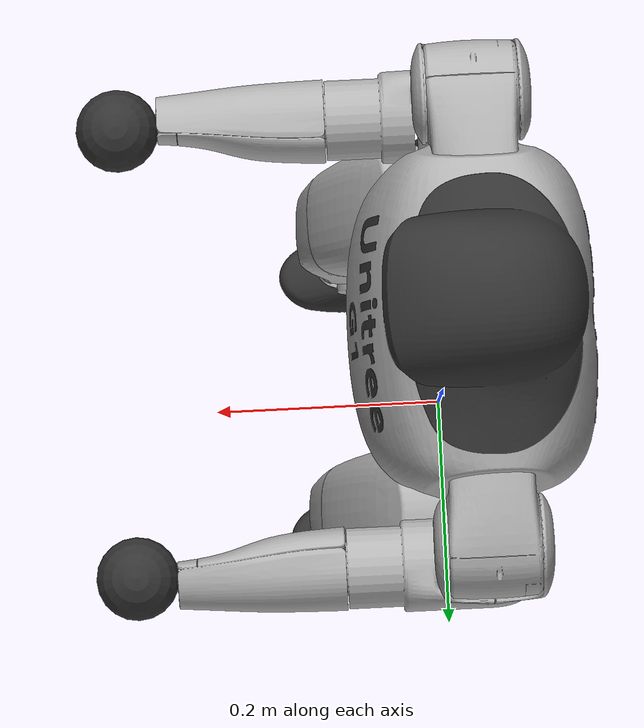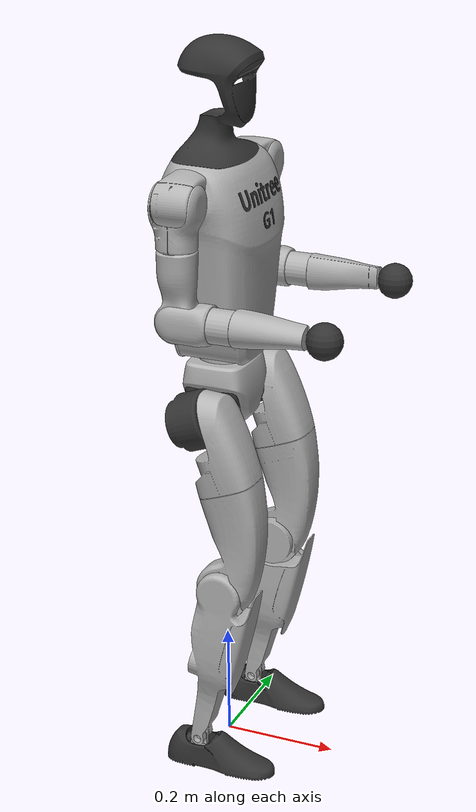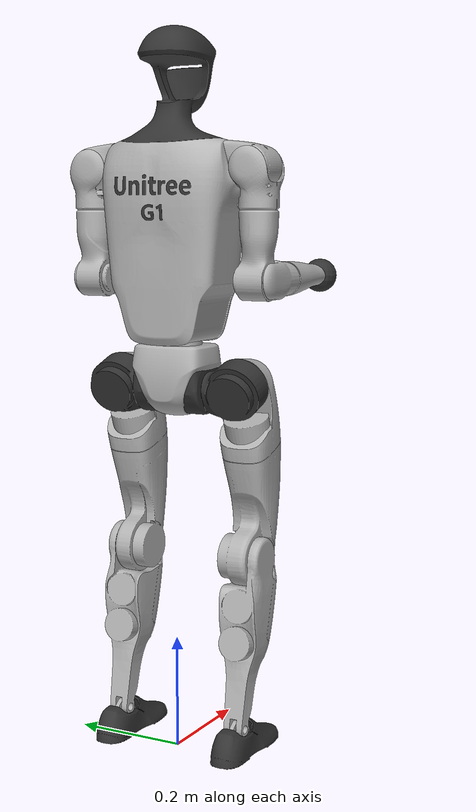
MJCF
<mujoco model="g1">
  <compiler angle="radian" meshdir="assets" autolimits="true"/>

  <option timestep="0.01" iterations="1" ls_iterations="5">
    <flag eulerdamp="disable"/>
  </option>

  <custom>
    <numeric data="15" name="max_contact_points" />
    <numeric data="15" name="max_geom_pairs" />
  </custom>

  <default>
    <geom condim="3"/>
    <default class="g1">
      <site rgba="1 0 0 1" size="0.01" group="5"/>
      <joint damping="0.5" armature="0.01" frictionloss="0.1"/>
      <position dampratio="1" inheritrange="1"/>
      <default class="arm_joint">
        <position kp="10" forcerange="-20 20"/>
      </default>
      <default class="hip_joint">
        <position kp="40" dampratio="0.2" forcerange="-88 88"/>
      </default>
      <default class="knee_joint">
        <position kp="40" forcerange="-139 139"/>
      </default>
      <default class="ankle_joint">
        <position kp="30" forcerange="-40 40"/>
      </default>
      <default class="torso_joint">
        <position kp="20" forcerange="-88 88"/>
      </default>
      <default class="visual">
        <geom group="2" type="mesh" contype="0" conaffinity="0" density="0" material="metallic"/>
      </default>
      <default class="col">
        <geom group="3" type="capsule"/>
        <default class="foot_collision">
          <geom quat="0.707107 0.707107 0 0" type="capsule" size="0.02 0.02"/>
        </default>
        <default class="shin_collision">
          <geom pos="0.007 0.005 -0.18" size="0.03 0.1"/>
        </default>
        <default class="knee_collision">
          <geom pos="-0.08 0.0 -0.18" type="sphere" size="0.05"/>
        </default>
        <default class="thigh_collision">
          <geom pos="-0.02 0.0 0.0" size="0.05 0.12"/>
        </default>
        <default class="pelvis_collision">
          <geom pos="0.0 0.0 0.18" size="0.06 0.27"/>
        </default>
        <default class="torso_collision">
          <geom pos="0.0 0.0 0.0" size="0.05 0.1"/>
        </default>
        <default class="shoulder_collision">
          <geom pos="-0.004 0.006 -0.09" size="0.03 0.09" />
        </default>
        <default class="forearm_collision">
          <geom pos="0.03 0 0" quat="0.707107 0 0.707107 0 " size="0.03 0.07" />
        </default>
        <default class="hand_collision">
          <geom pos="0.15 0 0" type="sphere" size="0.03"/>
        </default>
      </default>
    </default>
  </default>

  <asset>
    <material name="metallic" rgba="0.7 0.7 0.7 1"/>
    <material name="black" rgba="0.2 0.2 0.2 1"/>

    <mesh file="pelvis.STL"/>
    <mesh file="pelvis_contour_link.STL"/>
    <mesh file="left_hip_pitch_link.STL"/>
    <mesh file="left_hip_roll_link.STL"/>
    <mesh file="left_hip_yaw_link.STL"/>
    <mesh file="left_knee_link.STL"/>
    <mesh file="left_ankle_pitch_link.STL"/>
    <mesh file="left_ankle_roll_link.STL"/>
    <mesh file="right_hip_pitch_link.STL"/>
    <mesh file="right_hip_roll_link.STL"/>
    <mesh file="right_hip_yaw_link.STL"/>
    <mesh file="right_knee_link.STL"/>
    <mesh file="right_ankle_pitch_link.STL"/>
    <mesh file="right_ankle_roll_link.STL"/>
    <mesh file="torso_link.STL"/>
    <mesh file="head_link.STL"/>
    <mesh file="left_shoulder_pitch_link.STL"/>
    <mesh file="left_shoulder_roll_link.STL"/>
    <mesh file="left_shoulder_yaw_link.STL"/>
    <mesh file="left_elbow_pitch_link.STL"/>
    <mesh file="left_elbow_roll_link.STL"/>
    <mesh file="right_shoulder_pitch_link.STL"/>
    <mesh file="right_shoulder_roll_link.STL"/>
    <mesh file="right_shoulder_yaw_link.STL"/>
    <mesh file="right_elbow_pitch_link.STL"/>
    <mesh file="right_elbow_roll_link.STL"/>
    <mesh file="logo_link.STL"/>
    <mesh file="left_palm_link.STL"/>
    <mesh file="left_zero_link.STL"/>
    <mesh file="left_one_link.STL"/>
    <mesh file="left_two_link.STL"/>
    <mesh file="left_three_link.STL"/>
    <mesh file="left_four_link.STL"/>
    <mesh file="left_five_link.STL"/>
    <mesh file="left_six_link.STL"/>
    <mesh file="right_palm_link.STL"/>
    <mesh file="right_zero_link.STL"/>
    <mesh file="right_one_link.STL"/>
    <mesh file="right_two_link.STL"/>
    <mesh file="right_three_link.STL"/>
    <mesh file="right_four_link.STL"/>
    <mesh file="right_five_link.STL"/>
    <mesh file="right_six_link.STL"/>
  </asset>

  <worldbody>
    <light name="spotlight" mode="targetbodycom" target="pelvis" pos="0 -6 4" cutoff="30"/>
    <body name="pelvis" pos="0 0 0.755" childclass="g1">
      <inertial pos="0 0 -0.07605" quat="1 0 -0.000405289 0" mass="2.86" diaginertia="0.0079143 0.0069837 0.0059404"/>
      <light name="tracking" mode="trackcom" pos="0 0 2"/>
      <geom type="mesh" class="visual" mesh="pelvis"/>
      <geom class="pelvis_collision" />
      <geom type="mesh" class="visual" material="black" mesh="pelvis_contour_link"/>
      <body name="left_hip_pitch_link" pos="0 0.06445 -0.1027" quat="0.984807 0 -0.17365 0">
        <inertial pos="0.001962 0.049392 -0.000941" quat="0.420735 0.907025 -0.0155675 -0.00670646" mass="1.299"
          diaginertia="0.00138785 0.000955478 0.00086947"/>
        <joint name="left_hip_pitch_joint" axis="0 1 0" range="-2.35 3.05"/>
        <geom type="mesh" class="visual" material="black" mesh="left_hip_pitch_link"/>
        <body name="left_hip_roll_link" pos="0 0.0523 0">
          <inertial pos="0.024757 -0.001036 -0.086323" quat="0.977498 -0.00692636 0.210181 0.0165269" mass="1.446"
            diaginertia="0.00244106 0.00230425 0.00142899"/>
          <joint name="left_hip_roll_joint" axis="1 0 0" range="-0.26 2.53"/>
          <geom type="mesh" class="visual" mesh="left_hip_roll_link"/>
          <body name="left_hip_yaw_link" pos="0.01966 -0.0012139 -0.1241">
            <inertial pos="-0.053554 -0.011477 -0.14067" quat="0.645099 0.15885 0.202109 0.71956" mass="2.052"
              diaginertia="0.0114475 0.0107868 0.00214501"/>
            <joint name="left_hip_yaw_joint" axis="0 0 1" range="-2.75 2.75"/>
            <geom type="mesh" class="visual" mesh="left_hip_yaw_link"/>
            <geom class="thigh_collision" />
            <geom class="knee_collision" />
            <body name="left_knee_link" pos="-0.078292 -0.0017335 -0.177225" quat="0.967714 0 0.252052 0">
              <inertial pos="0.005505 0.006534 -0.116629" quat="0.799234 -0.0128894 0.0354278 0.599836" mass="2.252"
                diaginertia="0.0127418 0.0124382 0.00192524"/>
              <joint name="left_knee_joint" axis="0 1 0" range="-0.33489 2.5449"/>
              <geom type="mesh" class="visual" mesh="left_knee_link"/>
              <geom class="shin_collision" />
              <body name="left_ankle_pitch_link" pos="0 0.0040687 -0.30007" quat="0.99678 0 -0.0801788 0">
                <inertial pos="-0.007269 0 0.011137" quat="0.603053 0.369225 0.369225 0.603053" mass="0.074"
                  diaginertia="1.89e-05 1.40805e-05 6.9195e-06"/>
                <joint name="left_ankle_pitch_joint" axis="0 1 0" range="-0.68 0.73"/>
                <geom type="mesh" class="visual" mesh="left_ankle_pitch_link"/>
                <body name="left_ankle_roll_link" pos="0 0 -0.017558">
                  <site name="left_foot" pos="0 0 0"/>
                  <inertial pos="0.024762 2e-05 -0.012526" quat="0.000771333 0.734476 0.000921291 0.678634" mass="0.391"
                    diaginertia="0.00110394 0.0010657 0.000149255"/>
                  <joint name="left_ankle_roll_joint" axis="1 0 0" range="-0.2618 0.2618"/>
                  <geom type="mesh" class="visual" material="black" mesh="left_ankle_roll_link"/>
                  <geom pos="-0.03 0.0 -0.015" class="foot_collision" />
                  <geom pos="0.1 0.0 -0.015" class="foot_collision" />
                  <site name="left_toe" pos="0.1 0 -0.015"/>
                  <site name="left_heel" pos="-0.03 0 -0.015"/>
                </body>
              </body>
            </body>
          </body>
        </body>
      </body>
      <body name="right_hip_pitch_link" pos="0 -0.06445 -0.1027" quat="0.984807 0 -0.17365 0">
        <inertial pos="0.001962 -0.049392 -0.000941" quat="0.907025 0.420735 0.00670646 0.0155675" mass="1.299"
          diaginertia="0.00138785 0.000955478 0.00086947"/>
        <joint name="right_hip_pitch_joint" axis="0 1 0" range="-2.35 3.05"/>
        <geom type="mesh" class="visual" material="black" mesh="right_hip_pitch_link"/>
        <body name="right_hip_roll_link" pos="0 -0.0523 0">
          <inertial pos="0.024757 0.001036 -0.086323" quat="0.977498 0.00692636 0.210181 -0.0165269" mass="1.446"
            diaginertia="0.00244106 0.00230425 0.00142899"/>
          <joint name="right_hip_roll_joint" axis="1 0 0" range="-2.53 0.26"/>
          <geom type="mesh" class="visual" mesh="right_hip_roll_link"/>
          <body name="right_hip_yaw_link" pos="0.01966 0.0012139 -0.1241">
            <inertial pos="-0.053554 0.011477 -0.14067" quat="0.71956 0.202109 0.15885 0.645099" mass="2.052"
              diaginertia="0.0114475 0.0107868 0.00214501"/>
            <joint name="right_hip_yaw_joint" axis="0 0 1" range="-2.75 2.75"/>
            <geom type="mesh" class="visual" mesh="right_hip_yaw_link"/>
            <geom class="thigh_collision" />
            <geom class="knee_collision" />
            <body name="right_knee_link" pos="-0.078292 0.0017335 -0.177225" quat="0.967714 0 0.252052 0">
              <inertial pos="0.005505 -0.006534 -0.116629" quat="0.599836 0.0354278 -0.0128894 0.799234" mass="2.252"
                diaginertia="0.0127418 0.0124382 0.00192524"/>
              <joint name="right_knee_joint" axis="0 1 0" range="-0.33489 2.5449"/>
              <geom type="mesh" class="visual" mesh="right_knee_link"/>
              <geom class="shin_collision" />
              <body name="right_ankle_pitch_link" pos="0 -0.0040687 -0.30007" quat="0.99678 0 -0.0801788 0">
                <inertial pos="-0.007269 0 0.011137" quat="0.603053 0.369225 0.369225 0.603053" mass="0.074"
                  diaginertia="1.89e-05 1.40805e-05 6.9195e-06"/>
                <joint name="right_ankle_pitch_joint" axis="0 1 0" range="-0.68 0.73"/>
                <geom type="mesh" class="visual" mesh="right_ankle_pitch_link"/>
                <body name="right_ankle_roll_link" pos="0 0 -0.017558">
                  <site name="right_foot" pos="0 0 0"/>
                  <inertial pos="0.024762 -2e-05 -0.012526" quat="-0.000771333 0.734476 -0.000921291 0.678634"
                    mass="0.391" diaginertia="0.00110394 0.0010657 0.000149255"/>
                  <joint name="right_ankle_roll_joint" axis="1 0 0" range="-0.2618 0.2618"/>
                  <geom type="mesh" class="visual" material="black" mesh="right_ankle_roll_link"/>
                  <geom pos="-0.03 0.0 -0.015" class="foot_collision" />
                  <geom pos="0.1 0.0 -0.015" class="foot_collision" />
                  <site name="right_toe" pos="0.1 0 -0.015"/>
                  <site name="right_heel" pos="-0.03 0 -0.015"/>
                </body>
              </body>
            </body>
          </body>
        </body>
      </body>
      <body name="torso_link">
        <inertial pos="0.00187791 0.00229457 0.208747" quat="0.999957 0.00624375 -0.00636707 -0.0026338" mass="7.52036"
          diaginertia="0.12848 0.111753 0.0350394"/>
        <site name="imu" pos="-0.04233868314 0.00166 0.152067"/>
        <site name="head" pos="0 0 0.5"/>
        <joint name="torso_joint" axis="0 0 1" range="-2.618 2.618"/>
        <geom type="mesh" class="visual" mesh="torso_link"/>
        <geom type="mesh" class="visual" material="black" mesh="head_link"/>
        <geom type="mesh" class="visual" material="black" mesh="logo_link"/>
        <geom class="torso_collision" pos="0.0 0.06 0.18" />
        <geom class="torso_collision" pos="0.0 -0.06 0.18" />
        <body name="left_shoulder_pitch_link" pos="-0.0025 0.10396 0.25928" quat="0.990268 0.139172 0 0">
          <inertial pos="-0.001431 0.048811 0.001304" quat="0.786417 0.588396 -0.180543 0.0523639" mass="0.713"
            diaginertia="0.000466421 0.000440181 0.000410999"/>
          <joint name="left_shoulder_pitch_joint" axis="0 1 0" range="-2.9671 2.7925"/>
          <geom type="mesh" class="visual" mesh="left_shoulder_pitch_link"/>
          <body name="left_shoulder_roll_link" pos="0 0.052 0" quat="0.990268 -0.139172 0 0">
            <inertial pos="-0.003415 0.006955 -0.064598" quat="0.70683 0.0105364 0.00575207 0.707282" mass="0.642"
              diaginertia="0.000683514 0.000616029 0.000372857"/>
            <joint name="left_shoulder_roll_joint" axis="1 0 0" range="-1.5882 2.2515"/>
            <geom type="mesh" class="visual" mesh="left_shoulder_roll_link"/>
            <geom class="shoulder_collision" />
            <body name="left_shoulder_yaw_link" pos="-0.00354 0.0062424 -0.1032">
              <inertial pos="0.000375 -0.00444 -0.072374" quat="0.903834 -0.0374183 0.00985482 0.42613" mass="0.713"
                diaginertia="0.000977874 0.000964661 0.000379065"/>
              <joint name="left_shoulder_yaw_joint" axis="0 0 1" range="-2.618 2.618"/>
              <geom type="mesh" class="visual" mesh="left_shoulder_yaw_link"/>
              <body name="left_elbow_pitch_link" pos="0 0.00189 -0.0855">
                <inertial pos="0.064497 0.002873 0" quat="0.582347 0.582495 0.400893 0.401069" mass="0.601"
                  diaginertia="0.00049549 0.0004712 0.00025371"/>
                <joint name="left_elbow_pitch_joint" axis="0 1 0" range="-0.2268 3.4208"/>
                <geom type="mesh" class="visual" mesh="left_elbow_pitch_link"/>
                <body name="left_elbow_roll_link" pos="0.1 0 0">
                  <inertial pos="0.133814 0.00147121 0.000265832" quat="0.496781 0.497877 0.498782 0.506502"
                    mass="0.50826" diaginertia="0.00239763 0.00226639 0.000285577"/>
                  <joint name="left_elbow_roll_joint" axis="1 0 0" range="-2.0943 2.0943"/>
                  <geom type="mesh" class="visual" mesh="left_elbow_roll_link"/>
                  <geom class="forearm_collision" />
                  <geom pos="0.15 0 0" type="sphere" size="0.03" class="visual" material="black"/>
                  <geom class="hand_collision"/>
                </body>
              </body>
            </body>
          </body>
        </body>
        <body name="right_shoulder_pitch_link" pos="-0.0025 -0.10396 0.25928" quat="0.990268 -0.139172 0 0">
          <inertial pos="-0.001431 -0.048811 0.001304" quat="0.588396 0.786417 -0.0523639 0.180543" mass="0.713"
            diaginertia="0.000466421 0.000440181 0.000410999"/>
          <joint name="right_shoulder_pitch_joint" axis="0 1 0" range="-2.9671 2.7925"/>
          <geom type="mesh" class="visual" mesh="right_shoulder_pitch_link"/>
          <body name="right_shoulder_roll_link" pos="0 -0.052 0" quat="0.990268 0.139172 0 0">
            <inertial pos="-0.003415 -0.006955 -0.064598" quat="0.707282 0.00575207 0.0105364 0.70683" mass="0.642"
              diaginertia="0.000683514 0.000616029 0.000372857"/>
            <joint name="right_shoulder_roll_joint" axis="1 0 0" range="-2.2515 1.5882"/>
            <geom type="mesh" class="visual" mesh="right_shoulder_roll_link"/>
            <geom class="shoulder_collision" />
            <body name="right_shoulder_yaw_link" pos="-0.00354 -0.0062424 -0.1032">
              <inertial pos="0.000375 0.00444 -0.072374" quat="0.42613 0.00985482 -0.0374183 0.903834" mass="0.713"
                diaginertia="0.000977874 0.000964661 0.000379065"/>
              <joint name="right_shoulder_yaw_joint" axis="0 0 1" range="-2.618 2.618"/>
              <geom type="mesh" class="visual" mesh="right_shoulder_yaw_link"/>
              <body name="right_elbow_pitch_link" pos="0 -0.00189 -0.0855">
                <inertial pos="0.064497 -0.002873 0" quat="0.401069 0.400893 0.582495 0.582347" mass="0.601"
                  diaginertia="0.00049549 0.0004712 0.00025371"/>
                <joint name="right_elbow_pitch_joint" axis="0 1 0" range="-0.2268 3.4208"/>
                <geom type="mesh" class="visual" mesh="right_elbow_pitch_link"/>
                <body name="right_elbow_roll_link" pos="0.1 0 0">
                  <inertial pos="0.133814 -0.00147121 0.000265832" quat="0.506502 0.498782 0.497877 0.496781"
                    mass="0.50826" diaginertia="0.00239763 0.00226639 0.000285577"/>
                  <joint name="right_elbow_roll_joint" axis="1 0 0" range="-2.0943 2.0943"/>
                  <geom type="mesh" class="visual" mesh="right_elbow_roll_link"/>
                  <geom class="forearm_collision" />
                  <geom pos="0.15 0 0" type="sphere" size="0.03" class="visual" material="black"/>
                  <geom class="hand_collision"/>
                </body>
              </body>
            </body>
          </body>
        </body>
      </body>
    </body>
  </worldbody>

  <actuator>
    <position class="hip_joint" name="left_hip_pitch_joint" joint="left_hip_pitch_joint"/>
    <position class="hip_joint" name="right_hip_pitch_joint" joint="right_hip_pitch_joint"/>
    <position class="hip_joint" name="left_hip_roll_joint" joint="left_hip_roll_joint"/>
    <position class="hip_joint" name="right_hip_roll_joint" joint="right_hip_roll_joint"/>
    <position class="hip_joint" name="right_hip_yaw_joint" joint="right_hip_yaw_joint"/>
    <position class="hip_joint" name="left_hip_yaw_joint" joint="left_hip_yaw_joint"/>

    <position class="knee_joint" name="left_knee_joint" joint="left_knee_joint"/>
    <position class="knee_joint" name="right_knee_joint" joint="right_knee_joint"/>

    <position class="ankle_joint" name="left_ankle_pitch_joint" joint="left_ankle_pitch_joint"/>
    <position class="ankle_joint" name="left_ankle_roll_joint" joint="left_ankle_roll_joint"/>
    <position class="ankle_joint" name="right_ankle_pitch_joint" joint="right_ankle_pitch_joint"/>
    <position class="ankle_joint" name="right_ankle_roll_joint" joint="right_ankle_roll_joint"/>

    <position class="torso_joint" name="torso_joint" joint="torso_joint"/>

    <position class="arm_joint" name="left_shoulder_pitch_joint" joint="left_shoulder_pitch_joint"/>
    <position class="arm_joint" name="left_shoulder_roll_joint" joint="left_shoulder_roll_joint"/>
    <position class="arm_joint" name="left_shoulder_yaw_joint" joint="left_shoulder_yaw_joint"/>
    <position class="arm_joint" name="left_elbow_pitch_joint" joint="left_elbow_pitch_joint"/>
    <position class="arm_joint" name="left_elbow_roll_joint" joint="left_elbow_roll_joint"/>

    <position class="arm_joint" name="right_shoulder_pitch_joint" joint="right_shoulder_pitch_joint"/>
    <position class="arm_joint" name="right_shoulder_roll_joint" joint="right_shoulder_roll_joint"/>
    <position class="arm_joint" name="right_shoulder_yaw_joint" joint="right_shoulder_yaw_joint"/>
    <position class="arm_joint" name="right_elbow_pitch_joint" joint="right_elbow_pitch_joint"/>
    <position class="arm_joint" name="right_elbow_roll_joint" joint="right_elbow_roll_joint"/>

  </actuator>

  <sensor>
    <gyro name="imu-angular-velocity" site="imu" cutoff="34.9"/>
    <accelerometer name="imu-linear-acceleration" site="imu" cutoff="157"/>
    <framequat name="imu-body-quat" objtype="site" objname="imu"/>
    <framelinvel name="imu-body-linvel" objtype="site" objname="imu"/>
  </sensor>

  <keyframe>
<!--      qpos="-->
    <key name="stand"
      qpos="
      0 0 0 0 0 0
      0 0 0 0 0 0
      0
      0 0 0 0 0
      0 0 0 0 0"/>
  </keyframe>
</mujoco>
